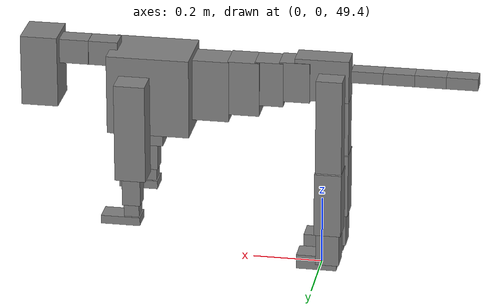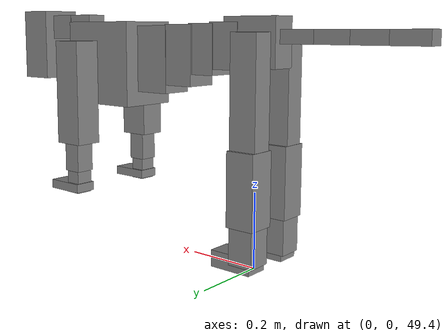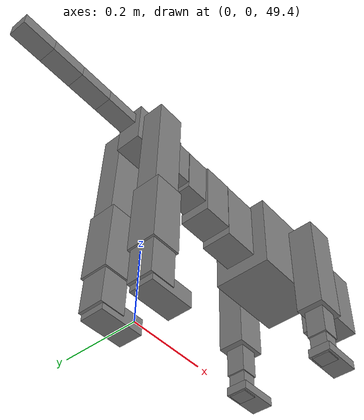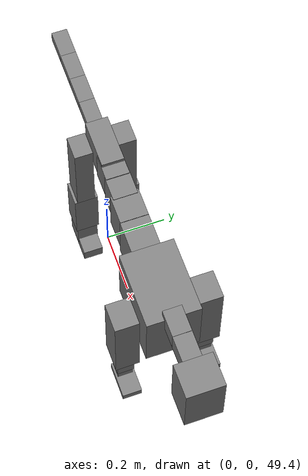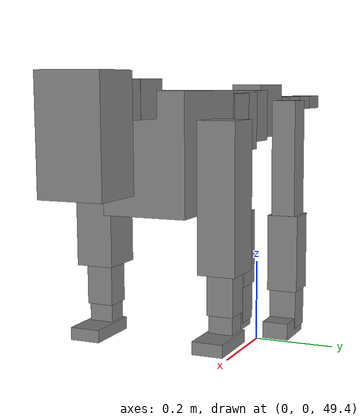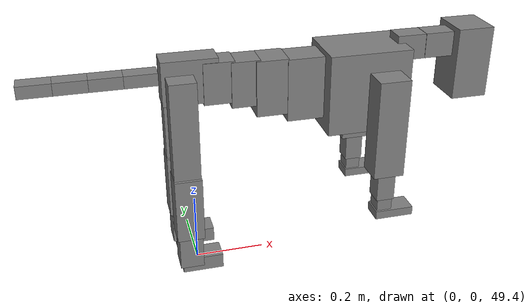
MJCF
<mujoco model="dog">

    <default>
        <joint armature="0.02" stiffness="1" damping="0.2" limited="true"/>
        <geom condim="3" friction="1 0.05 0.05" margin="0.01"/>
        <motor ctrllimited="true" ctrlrange="-1.0 1.0" forcelimited="true" gear="50"/>
    </default>

    <compiler inertiafromgeom="true" angle="radian"/>

    <option timestep="0.016" iterations="50" tolerance="1e-10" solver="Newton" jacobian="dense" cone="pyramidal"/>

    <size nconmax="20000" njmax="60000" nstack="5000000"/>
    <visual>
        <map force="0.1" zfar="30"/>
        <rgba haze="0.15 0.25 0.35 1"/>
        <quality shadowsize="2048"/>
        <global offwidth="800" offheight="800"/>
    </visual>

    <asset>
        <texture type="skybox" builtin="gradient" rgb1="0.3 0.5 0.7" rgb2="0 0 0" width="512" height="512"/>
        <texture name="texplane" type="2d" builtin="checker" rgb1=".2 .3 .4" rgb2=".1 0.15 0.2" width="512" height="512"
                 mark="cross" markrgb=".8 .8 .8"/>
        <texture name="texgeom" type="cube" builtin="flat" mark="cross" width="127" height="1278" rgb1="0.8 0.6 0.4"
                 rgb2="0.8 0.6 0.4" markrgb="1 1 1" random="0.01"/>

        <material name="matplane" reflectance="0.3" texture="texplane" texrepeat="1 1" texuniform="true"/>
        <material name="matgeom" texture="texgeom" texuniform="true" rgba="0.8 0.6 .4 1"/>
    </asset>

    <worldbody>
        <geom name="floor" pos="0 0 0" size="0 0 .25" type="plane" material="matplane" condim="3"/>

        <light directional="false" diffuse=".2 .2 .2" specular="0 0 0" pos="0 0 5" dir="0 0 -1" castshadow="false"/>
        <light mode="targetbodycom" target="torso" directional="false" diffuse=".8 .8 .8" specular="0.3 0.3 0.3"
               pos="0 0 4.0" dir="0 0 -1"/>

        <body name="root" pos="0 0 50">
            <freejoint name="root_1"/>
            <geom type="box" pos="0 0 -0.02" size="0.0774  0.0358  0.063" density="2030"/>

            <body name="spine1" pos="0.054 0 0">
                <joint name="spine1_y" axis="0 1 0" range="0 0.7" limited="true"/>
                <geom type="box" pos="0.02375 0 -0.03" size="0.04375  0.0375  0.05985" density="2030"/>

                <body name="spine2" pos="0.0612 0 0">
                    <joint name="spine2_y" axis="0 1 0" range="-0.15 0.15" limited="true"/>
                    <geom type="box" pos="0.03555  0  -0.04" size="0.04055  0.039  0.06615" density="2030"/>

                    <body name="spine3" pos="0.0730 0 0">
                        <joint name="spine3_y" axis="0 1 0" range="-0.15 0.15" limited="true"/>
                        <geom type="box" pos="0.03555  0  -0.057" size="0.04555  0.0445  0.081" density="2030"/>

                        <body name="spine4" pos="0.0780 0 0">
                            <joint name="spine4_y" axis="0 1 0" range="-0.15 0.15" limited="true"/>
                            <geom type="box" pos="0.05265  0  -0.07" size="0.05265  0.045  0.09135" density="2030"/>

                            <body name="torso" pos="0.1082 0 0">
                                <joint name="torso_y" axis="0 1 0" range="-0.15 0.15" limited="true"/>
                                <geom type="box" pos="0.11925  0  -0.085" size="0.11925  0.085  0.11745"
                                      density="2030"/>

                                <body name="neck1" pos="0.2160  0   0.0180">
                                    <joint name="neck1_y" axis="0 1 0" range="-1.2  -1" limited="true"/>
                                    <geom type="box" pos="0.0423  0  0" size="0.0423  0.03  0.036" density="2325"/>

                                    <body name="neck2" pos="0.0853  0  0">
                                        <joint name="neck2_y" axis="0 1 0" range="0.1  0" limited="true"/>
                                        <geom type="box" pos="0.0423  0  0" size="0.0423  0.03  0.036" density="2325"/>

                                        <body name="head" pos="0.0853  0  0">
                                            <joint name="head_y" axis="0 1 0" range="-0.3  -0.2" limited="true"/>
                                            <geom type="box" pos="0.0531  0  -0.055" size="0.0531  0.06  0.1044"
                                                  density="4030"/>

                                        </body>
                                    </body>
                                </body>

                                <body name="front_shoulder" pos="0.156  0   -0.0480">
                                    <joint name="front_shoulder_y" axis="0 1 0" range="-1 1.5" limited="true"/>
                                    <geom type="box" pos="0 0.13 -0.1188" size="0.0445  0.0380  0.1455" density="1158"/>
                                    <geom type="box" pos="0 -0.13 -0.1188" size="0.0445  0.0380  0.1455"
                                          density="1158"/>

                                    <body name="front_elbow" pos="0  0  -0.2376">
                                        <joint name="front_elbow_y" axis="0 1 0" range="-2 0" limited="true"/>
                                        <geom type="box" pos="0 0.13 -0.0539" size="0.0263  0.0269  0.0539"
                                              density="1081"/>
                                        <geom type="box" pos="0 -0.13 -0.0539" size="0.0263  0.0269  0.0539"
                                              density="1081"/>

                                        <body name="front_wrist" pos="0  0  -0.1079">
                                            <joint name="front_wrist_y" axis="0 1 0" range="-0.2 0" limited="true"/>
                                            <geom type="box" pos="0 0.13 -0.0250" size="0.0219  0.0244  0.0382"
                                                  density="1664"/>
                                            <geom type="box" pos="0 -0.13 -0.0250" size="0.0219  0.0244  0.0382"
                                                  density="1664"/>

                                            <body name="front_finger_end" pos="0  0  -0.0501">
                                                <joint name="front_finger_y" axis="0 1 0" range="-0.4 1"
                                                       limited="true"/>
                                                <geom type="box" pos="0.0309  0.13  0.0025"
                                                      size="0.0566  0.0309  0.0125" density="1515"/>
                                                <geom type="box" pos="0.0309  -0.13  0.0025"
                                                      size="0.0566  0.0309  0.0125" density="1515"/>

                                            </body>

                                        </body>
                                    </body>
                                </body>

                            </body>
                        </body>
                    </body>
                </body>
            </body>

            <body name="back_hip" pos="-0.03 0 -0.018">
                <joint name="back_hip_y" axis="0 1 0" range="-1.5 0.3" limited="true"/>
                <geom type="box" pos="0 0.07 -0.1379" size="0.0374  0.0293  0.1607" density="1154"/>
                <geom type="box" pos="0 -0.07 -0.1379" size="0.0374  0.0293  0.1607" density="1154"/>

                <body name="back_knee" pos="0  0  -0.2759">
                    <joint name="back_knee_y" axis="0 1 0" range="0 2.8" limited="true"/>
                    <geom type="box" pos="0 0.07 -0.0794" size="0.0387  0.0381  0.0950" density="1227"/>
                    <geom type="box" pos="0 -0.07 -0.0794" size="0.0387  0.0381  0.0950" density="1227"/>

                    <body name="back_ankle" pos="0  0  -0.1588">
                        <joint name="back_ankle_y" axis="0 1 0" range="-2.2 0" limited="true"/>
                        <geom type="box" pos="0 0.07 -0.0497" size="0.0336  0.0336  0.0610" density="1284"/>
                        <geom type="box" pos="0 -0.07 -0.0497" size="0.0336  0.0336  0.0610" density="1284"/>

                        <body name="back_toe_end" pos="0  0  -0.0995">
                            <joint name="back_toe_y" axis="0 1 0" range="-0.4 1" limited="true"/>
                            <geom type="box" pos="0.0317  0.07  -0.0064" size="0.0581  0.0317  0.0214" density="1515"/>
                            <geom type="box" pos="0.0317  -0.07  -0.0064" size="0.0581  0.0317  0.0214" density="1515"/>

                        </body>
                    </body>
                </body>
            </body>

            <body name="tail1" pos="-0.074 0 -0.006">
                <joint name="tail1_y" axis="0 1 0" range="-0.2 0.2" limited="true"/>
                <geom type="box" pos="-0.0536  0  0" size="0.045  0.025  0.0175" density="1587"/>

                <body name="tail2" pos="-0.09 0 0">
                    <joint name="tail2_y" axis="0 1 0" range="-0.2 0.2" limited="true"/>
                    <geom type="box" pos="-0.0536  0  0" size="0.045  0.025  0.0175" density="1587"/>

                    <body name="tail3" pos="-0.09 0 0">
                        <joint name="tail3_y" axis="0 1 0" range="-0.2 0.2" limited="true"/>
                        <geom type="box" pos="-0.0536  0  0" size="0.045  0.025  0.0175" density="1587"/>

                        <body name="tail4" pos="-0.09 0 0">
                            <joint name="tail4_y" axis="0 1 0" range="-0.2 0.2" limited="true"/>
                            <geom type="box" pos="-0.0536  0  0" size="0.045  0.025  0.0175" density="1587"/>

                        </body>
                    </body>
                </body>
            </body>
        </body>
    </worldbody>

    <actuator>
        <motor joint="spine1_y" forcerange="-150 150     "/>
        <motor joint="spine2_y" forcerange="-150 150     "/>
        <motor joint="spine3_y" forcerange="-150 150     "/>
        <motor joint="spine4_y" forcerange="-150 150     "/>
        <motor joint="torso_y" forcerange="-150 150     "/>
        <motor joint="neck1_y" forcerange="-100 100       "/>
        <motor joint="neck2_y" forcerange="-100 100       "/>
        <motor joint="head_y" forcerange="-150 150       "/>
        <motor joint="front_shoulder_y" forcerange="-193.56 160.01"/>
        <motor joint="front_elbow_y" forcerange="-135.47 160.17"/>
        <motor joint="front_wrist_y" forcerange="-122.94 72.12"/>
        <motor joint="front_finger_y" forcerange="-41.40 83.40"/>
        <motor joint="back_hip_y" forcerange="-338.76 251.87"/>
        <motor joint="back_knee_y" forcerange="-358.16 396.29"/>
        <motor joint="back_angle_y" forcerange="-237.57 200.33"/>
        <motor joint="back_toe_y" forcerange="-95.91 77.56"/>
        <motor joint="tail1_y" forcerange="-50 50     "/>
        <motor joint="tail2_y" forcerange="-50 50     "/>
        <motor joint="tail3_y" forcerange="-50 50     "/>
        <motor joint="tail4_y" forcerange="-50 50     "/>
    </actuator>
</mujoco>
